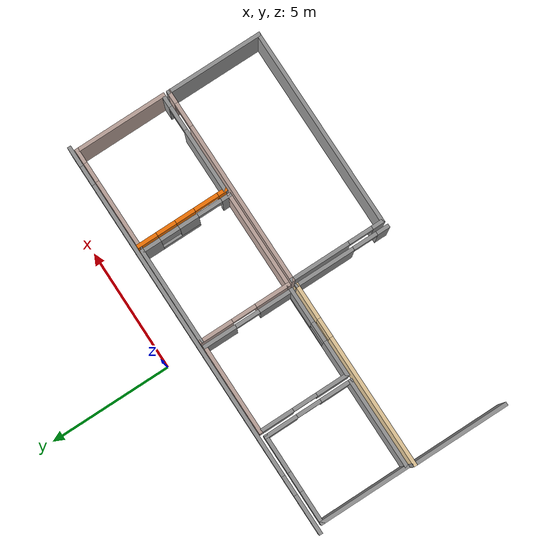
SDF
<sdf version="1.6">
 <model name="Testhaus1">
  <pose>0.163791 -11.4063 0 0 -0 0</pose>
  <link name="Wall_10">
   <collision name="Wall_10_Collision">
    <geometry><box><size>3.78012 0.15 2.5</size></box></geometry>
    <pose>0 0 1.25 0 -0 0</pose>
   </collision>
   <visual name="Wall_10_Visual">
    <pose>0 0 1.25 0 -0 0</pose>
    <geometry><box><size>3.78012 0.15 2.5</size></box></geometry>
    <material>
     <script><uri>file://media/materials/scripts/gazebo.material</uri><name>Gazebo/Grey</name></script>
     <ambient>1 1 1 1</ambient>
    </material>
    <meta><layer>0</layer></meta>
   </visual>
   <pose>-6.11 6.2 0 0 -0 0</pose>
  </link>
  <link name="Wall_11">
   <pose>-4.3 7.99 0 0 -0 1.57357</pose>
   <visual name="Wall_11_Visual_0">
    <pose>-1.19399 0 1.25 0 -0 0</pose>
    <geometry><box><size>1.36203 0.15 2.5</size></box></geometry>
    <material>
     <script><uri>file://media/materials/scripts/gazebo.material</uri><name>Gazebo/Grey</name></script>
     <ambient>1 1 1 1</ambient>
    </material>
    <meta><layer>0</layer></meta>
   </visual>
   <collision name="Wall_11_Collision_0">
    <geometry><box><size>1.36203 0.15 2.5</size></box></geometry>
    <pose>-1.19399 0 1.25 0 -0 0</pose>
   </collision>
   <visual name="Wall_11_Visual_1">
    <pose>1.18101 0 1.25 0 -0 0</pose>
    <geometry><box><size>1.38799 0.15 2.5</size></box></geometry>
    <material>
     <script><uri>file://media/materials/scripts/gazebo.material</uri><name>Gazebo/Grey</name></script>
     <ambient>1 1 1 1</ambient>
    </material>
    <meta><layer>0</layer></meta>
   </visual>
   <collision name="Wall_11_Collision_1">
    <geometry><box><size>1.38799 0.15 2.5</size></box></geometry>
    <pose>1.18101 0 1.25 0 -0 0</pose>
   </collision>
   <visual name="Wall_11_Visual_2">
    <pose>-0.012979 0 2.25 0 -0 0</pose>
    <geometry><box><size>1 0.15 0.5</size></box></geometry>
    <material>
     <script><uri>file://media/materials/scripts/gazebo.material</uri><name>Gazebo/Grey</name></script>
     <ambient>1 1 1 1</ambient>
    </material>
    <meta><layer>0</layer></meta>
   </visual>
   <collision name="Wall_11_Collision_2">
    <geometry><box><size>1 0.15 0.5</size></box></geometry>
    <pose>-0.012979 0 2.25 0 -0 0</pose>
   </collision>
  </link>
  <link name="Wall_14">
   <pose>-4.04051 8.02376 0 0 -0 -1.5708</pose>
   <visual name="Wall_14_Visual_0">
    <pose>-1.18411 0 1.25 0 -0 0</pose>
    <geometry><box><size>1.46177 0.15 2.5</size></box></geometry>
    <material>
     <script><uri>file://media/materials/scripts/gazebo.material</uri><name>Gazebo/Grey</name></script>
     <ambient>1 1 1 1</ambient>
    </material>
    <meta><layer>0</layer></meta>
   </visual>
   <collision name="Wall_14_Collision_0">
    <geometry><box><size>1.46177 0.15 2.5</size></box></geometry>
    <pose>-1.18411 0 1.25 0 -0 0</pose>
   </collision>
   <visual name="Wall_14_Visual_1">
    <pose>1.23089 0 1.25 0 -0 0</pose>
    <geometry><box><size>1.36823 0.15 2.5</size></box></geometry>
    <material>
     <script><uri>file://media/materials/scripts/gazebo.material</uri><name>Gazebo/Grey</name></script>
     <ambient>1 1 1 1</ambient>
    </material>
    <meta><layer>0</layer></meta>
   </visual>
   <collision name="Wall_14_Collision_1">
    <geometry><box><size>1.36823 0.15 2.5</size></box></geometry>
    <pose>1.23089 0 1.25 0 -0 0</pose>
   </collision>
   <visual name="Wall_14_Visual_2">
    <pose>0.046771 0 2.25 0 -0 0</pose>
    <geometry><box><size>1 0.15 0.5</size></box></geometry>
    <material>
     <script><uri>file://media/materials/scripts/gazebo.material</uri><name>Gazebo/Grey</name></script>
     <ambient>1 1 1 1</ambient>
    </material>
    <meta><layer>0</layer></meta>
   </visual>
   <collision name="Wall_14_Collision_2">
    <geometry><box><size>1 0.15 0.5</size></box></geometry>
    <pose>0.046771 0 2.25 0 -0 0</pose>
   </collision>
  </link>
  <link name="Wall_15">
   <pose>-2.24051 6.18377 0 0 -0 0</pose>
   <visual name="Wall_15_Visual_0">
    <pose>-1.12575 0 1.25 0 -0 0</pose>
    <geometry><box><size>1.49849 0.15 2.5</size></box></geometry>
    <material>
     <script><uri>file://media/materials/scripts/gazebo.material</uri><name>Gazebo/Grey</name></script>
     <ambient>1 1 1 1</ambient>
    </material>
    <meta><layer>0</layer></meta>
   </visual>
   <collision name="Wall_15_Collision_0">
    <geometry><box><size>1.49849 0.15 2.5</size></box></geometry>
    <pose>-1.12575 0 1.25 0 -0 0</pose>
   </collision>
   <visual name="Wall_15_Visual_1">
    <pose>0.749247 0 0.25 0 -0 0</pose>
    <geometry><box><size>2.2515 0.15 0.5</size></box></geometry>
    <material>
     <script><uri>file://media/materials/scripts/gazebo.material</uri><name>Gazebo/Grey</name></script>
     <ambient>1 1 1 1</ambient>
    </material>
    <meta><layer>0</layer></meta>
   </visual>
   <collision name="Wall_15_Collision_1">
    <geometry><box><size>2.2515 0.15 0.5</size></box></geometry>
    <pose>0.749247 0 0.25 0 -0 0</pose>
   </collision>
   <visual name="Wall_15_Visual_2">
    <pose>1.14925 0 1.5 0 -0 0</pose>
    <geometry><box><size>1.45151 0.15 2</size></box></geometry>
    <material>
     <script><uri>file://media/materials/scripts/gazebo.material</uri><name>Gazebo/Grey</name></script>
     <ambient>1 1 1 1</ambient>
    </material>
    <meta><layer>0</layer></meta>
   </visual>
   <collision name="Wall_15_Collision_2">
    <geometry><box><size>1.45151 0.15 2</size></box></geometry>
    <pose>1.14925 0 1.5 0 -0 0</pose>
   </collision>
   <visual name="Wall_15_Visual_3">
    <pose>0.023495 0 1.9 0 -0 0</pose>
    <geometry><box><size>0.8 0.15 1.2</size></box></geometry>
    <material>
     <script><uri>file://media/materials/scripts/gazebo.material</uri><name>Gazebo/Grey</name></script>
     <ambient>1 1 1 1</ambient>
    </material>
    <meta><layer>0</layer></meta>
   </visual>
   <collision name="Wall_15_Collision_3">
    <geometry><box><size>0.8 0.15 1.2</size></box></geometry>
    <pose>0.023495 0 1.9 0 -0 0</pose>
   </collision>
  </link>
  <link name="Wall_16">
   <pose>-0.440512 8.02376 0 0 -0 1.5708</pose>
   <visual name="Wall_16_Visual_0">
    <pose>-1.19129 0 1.25 0 -0 0</pose>
    <geometry><box><size>1.44742 0.15 2.5</size></box></geometry>
    <material>
     <script><uri>file://media/materials/scripts/gazebo.material</uri><name>Gazebo/Grey</name></script>
     <ambient>1 1 1 1</ambient>
    </material>
    <meta><layer>0</layer></meta>
   </visual>
   <collision name="Wall_16_Collision_0">
    <geometry><box><size>1.44742 0.15 2.5</size></box></geometry>
    <pose>-1.19129 0 1.25 0 -0 0</pose>
   </collision>
   <visual name="Wall_16_Visual_1">
    <pose>1.22371 0 1.25 0 -0 0</pose>
    <geometry><box><size>1.38258 0.15 2.5</size></box></geometry>
    <material>
     <script><uri>file://media/materials/scripts/gazebo.material</uri><name>Gazebo/Grey</name></script>
     <ambient>1 1 1 1</ambient>
    </material>
    <meta><layer>0</layer></meta>
   </visual>
   <collision name="Wall_16_Collision_1">
    <geometry><box><size>1.38258 0.15 2.5</size></box></geometry>
    <pose>1.22371 0 1.25 0 -0 0</pose>
   </collision>
   <visual name="Wall_16_Visual_2">
    <pose>0.032421 0 2.25 0 -0 0</pose>
    <geometry><box><size>1 0.15 0.5</size></box></geometry>
    <material>
     <script><uri>file://media/materials/scripts/gazebo.material</uri><name>Gazebo/Grey</name></script>
     <ambient>1 1 1 1</ambient>
    </material>
    <meta><layer>0</layer></meta>
   </visual>
   <collision name="Wall_16_Collision_2">
    <geometry><box><size>1 0.15 0.5</size></box></geometry>
    <pose>0.032421 0 2.25 0 -0 0</pose>
   </collision>
  </link>
  <link name="Wall_17">
   <collision name="Wall_17_Collision">
    <geometry><box><size>3.75 0.15 2.5</size></box></geometry>
    <pose>0 0 1.25 0 -0 0</pose>
   </collision>
   <visual name="Wall_17_Visual">
    <pose>0 0 1.25 0 -0 0</pose>
    <geometry><box><size>3.75 0.15 2.5</size></box></geometry>
    <material>
     <script><uri>file://media/materials/scripts/gazebo.material</uri><name>Gazebo/Grey</name></script>
     <ambient>0.760784 0.662745 0.627451 1</ambient>
    </material>
    <meta><layer>0</layer></meta>
   </visual>
   <pose>-2.24051 9.87377 0 0 -0 3.14159</pose>
  </link>
  <link name="Wall_19">
   <pose>-0.210083 8.02674 0 0 -0 1.5708</pose>
   <visual name="Wall_19_Visual_0">
    <pose>-1.19778 0 1.25 0 -0 0</pose>
    <geometry><box><size>1.45445 0.15 2.5</size></box></geometry>
    <material>
     <script><uri>file://media/materials/scripts/gazebo.material</uri><name>Gazebo/Grey</name></script>
     <ambient>0.760784 0.662745 0.627451 1</ambient>
    </material>
    <meta><layer>0</layer></meta>
   </visual>
   <collision name="Wall_19_Collision_0">
    <geometry><box><size>1.45445 0.15 2.5</size></box></geometry>
    <pose>-1.19778 0 1.25 0 -0 0</pose>
   </collision>
   <visual name="Wall_19_Visual_1">
    <pose>1.22723 0 1.25 0 -0 0</pose>
    <geometry><box><size>1.39555 0.15 2.5</size></box></geometry>
    <material>
     <script><uri>file://media/materials/scripts/gazebo.material</uri><name>Gazebo/Grey</name></script>
     <ambient>0.760784 0.662745 0.627451 1</ambient>
    </material>
    <meta><layer>0</layer></meta>
   </visual>
   <collision name="Wall_19_Collision_1">
    <geometry><box><size>1.39555 0.15 2.5</size></box></geometry>
    <pose>1.22723 0 1.25 0 -0 0</pose>
   </collision>
   <visual name="Wall_19_Visual_2">
    <pose>0.02945 0 2.25 0 -0 0</pose>
    <geometry><box><size>1 0.15 0.5</size></box></geometry>
    <material>
     <script><uri>file://media/materials/scripts/gazebo.material</uri><name>Gazebo/Grey</name></script>
     <ambient>0.760784 0.662745 0.627451 1</ambient>
    </material>
    <meta><layer>0</layer></meta>
   </visual>
   <collision name="Wall_19_Collision_2">
    <geometry><box><size>1 0.15 0.5</size></box></geometry>
    <pose>0.02945 0 2.25 0 -0 0</pose>
   </collision>
  </link>
  <link name="Wall_20">
   <collision name="Wall_20_Collision">
    <geometry><box><size>4 0.15 2.5</size></box></geometry>
    <pose>0 0 1.25 0 -0 0</pose>
   </collision>
   <visual name="Wall_20_Visual">
    <pose>0 0 1.25 0 -0 0</pose>
    <geometry><box><size>4 0.15 2.5</size></box></geometry>
    <material>
     <script><uri>file://media/materials/scripts/gazebo.material</uri><name>Gazebo/Grey</name></script>
     <ambient>1 1 1 1</ambient>
    </material>
    <meta><layer>0</layer></meta>
   </visual>
   <pose>1.71492 9.88674 0 0 -0 0</pose>
  </link>
  <link name="Wall_21">
   <pose>3.63992 8.02674 0 0 -0 -1.5708</pose>
   <visual name="Wall_21_Visual_0">
    <pose>-1.51075 0 1.25 0 -0 0</pose>
    <geometry><box><size>0.828493 0.15 2.5</size></box></geometry>
    <material>
     <script><uri>file://media/materials/scripts/gazebo.material</uri><name>Gazebo/Grey</name></script>
     <ambient>1 1 1 1</ambient>
    </material>
    <meta><layer>0</layer></meta>
   </visual>
   <collision name="Wall_21_Collision_0">
    <geometry><box><size>0.828493 0.15 2.5</size></box></geometry>
    <pose>-1.51075 0 1.25 0 -0 0</pose>
   </collision>
   <visual name="Wall_21_Visual_1">
    <pose>1.71575 0 1.25 0 -0 0</pose>
    <geometry><box><size>0.418499 0.15 2.5</size></box></geometry>
    <material>
     <script><uri>file://media/materials/scripts/gazebo.material</uri><name>Gazebo/Grey</name></script>
     <ambient>1 1 1 1</ambient>
    </material>
    <meta><layer>0</layer></meta>
   </visual>
   <collision name="Wall_21_Collision_1">
    <geometry><box><size>0.418499 0.15 2.5</size></box></geometry>
    <pose>1.71575 0 1.25 0 -0 0</pose>
   </collision>
   <visual name="Wall_21_Visual_2">
    <pose>-0.295003 0 0.25 0 -0 0</pose>
    <geometry><box><size>1.60301 0.15 0.5</size></box></geometry>
    <material>
     <script><uri>file://media/materials/scripts/gazebo.material</uri><name>Gazebo/Grey</name></script>
     <ambient>1 1 1 1</ambient>
    </material>
    <meta><layer>0</layer></meta>
   </visual>
   <collision name="Wall_21_Collision_2">
    <geometry><box><size>1.60301 0.15 0.5</size></box></geometry>
    <pose>-0.295003 0 0.25 0 -0 0</pose>
   </collision>
   <visual name="Wall_21_Visual_3">
    <pose>0.104997 0 1.5 0 -0 0</pose>
    <geometry><box><size>0.803009 0.15 2</size></box></geometry>
    <material>
     <script><uri>file://media/materials/scripts/gazebo.material</uri><name>Gazebo/Grey</name></script>
     <ambient>1 1 1 1</ambient>
    </material>
    <meta><layer>0</layer></meta>
   </visual>
   <collision name="Wall_21_Collision_3">
    <geometry><box><size>0.803009 0.15 2</size></box></geometry>
    <pose>0.104997 0 1.5 0 -0 0</pose>
   </collision>
   <visual name="Wall_21_Visual_4">
    <pose>-0.696507 0 1.9 0 -0 0</pose>
    <geometry><box><size>0.8 0.15 1.2</size></box></geometry>
    <material>
     <script><uri>file://media/materials/scripts/gazebo.material</uri><name>Gazebo/Grey</name></script>
     <ambient>1 1 1 1</ambient>
    </material>
    <meta><layer>0</layer></meta>
   </visual>
   <collision name="Wall_21_Collision_4">
    <geometry><box><size>0.8 0.15 1.2</size></box></geometry>
    <pose>-0.696507 0 1.9 0 -0 0</pose>
   </collision>
   <visual name="Wall_21_Visual_5">
    <pose>1.0065 0 2.25 0 -0 0</pose>
    <geometry><box><size>1 0.15 0.5</size></box></geometry>
    <material>
     <script><uri>file://media/materials/scripts/gazebo.material</uri><name>Gazebo/Grey</name></script>
     <ambient>1 1 1 1</ambient>
    </material>
    <meta><layer>0</layer></meta>
   </visual>
   <collision name="Wall_21_Collision_5">
    <geometry><box><size>1 0.15 0.5</size></box></geometry>
    <pose>1.0065 0 2.25 0 -0 0</pose>
   </collision>
  </link>
  <link name="Wall_22">
   <collision name="Wall_22_Collision">
    <geometry><box><size>4 0.15 2.5</size></box></geometry>
    <pose>0 0 1.25 0 -0 0</pose>
   </collision>
   <visual name="Wall_22_Visual">
    <pose>0 0 1.25 0 -0 0</pose>
    <geometry><box><size>4 0.15 2.5</size></box></geometry>
    <material>
     <script><uri>file://media/materials/scripts/gazebo.material</uri><name>Gazebo/Grey</name></script>
     <ambient>0.760784 0.662745 0.627451 1</ambient>
    </material>
    <meta><layer>0</layer></meta>
   </visual>
   <pose>1.71492 6.17674 0 0 -0 3.14159</pose>
  </link>
  <link name="Wall_25">
   <pose>3.87412 8.04618 0 0 -0 -1.56808</pose>
   <visual name="Wall_25_Visual_0">
    <pose>-1.49608 0 1.25 0 -0 0</pose>
    <geometry><box><size>0.837861 0.15 2.5</size></box></geometry>
    <material>
     <script><uri>file://media/materials/scripts/gazebo.material</uri><name>Gazebo/Grey</name></script>
     <ambient>0.996078 0.47451 0.0196078 1</ambient>
    </material>
    <meta><layer>0</layer></meta>
   </visual>
   <collision name="Wall_25_Collision_0">
    <geometry><box><size>0.837861 0.15 2.5</size></box></geometry>
    <pose>-1.49608 0 1.25 0 -0 0</pose>
   </collision>
   <visual name="Wall_25_Visual_1">
    <pose>1.72051 0 1.25 0 -0 0</pose>
    <geometry><box><size>0.388999 0.15 2.5</size></box></geometry>
    <material>
     <script><uri>file://media/materials/scripts/gazebo.material</uri><name>Gazebo/Grey</name></script>
     <ambient>0.996078 0.47451 0.0196078 1</ambient>
    </material>
    <meta><layer>0</layer></meta>
   </visual>
   <collision name="Wall_25_Collision_1">
    <geometry><box><size>0.388999 0.15 2.5</size></box></geometry>
    <pose>1.72051 0 1.25 0 -0 0</pose>
   </collision>
   <visual name="Wall_25_Visual_2">
    <pose>-0.275569 0 0.25 0 -0 0</pose>
    <geometry><box><size>1.60315 0.15 0.5</size></box></geometry>
    <material>
     <script><uri>file://media/materials/scripts/gazebo.material</uri><name>Gazebo/Grey</name></script>
     <ambient>0.996078 0.47451 0.0196078 1</ambient>
    </material>
    <meta><layer>0</layer></meta>
   </visual>
   <collision name="Wall_25_Collision_2">
    <geometry><box><size>1.60315 0.15 0.5</size></box></geometry>
    <pose>-0.275569 0 0.25 0 -0 0</pose>
   </collision>
   <visual name="Wall_25_Visual_3">
    <pose>0.124431 0 1.5 0 -0 0</pose>
    <geometry><box><size>0.803154 0.15 2</size></box></geometry>
    <material>
     <script><uri>file://media/materials/scripts/gazebo.material</uri><name>Gazebo/Grey</name></script>
     <ambient>0.996078 0.47451 0.0196078 1</ambient>
    </material>
    <meta><layer>0</layer></meta>
   </visual>
   <collision name="Wall_25_Collision_3">
    <geometry><box><size>0.803154 0.15 2</size></box></geometry>
    <pose>0.124431 0 1.5 0 -0 0</pose>
   </collision>
   <visual name="Wall_25_Visual_4">
    <pose>-0.677146 0 1.9 0 -0 0</pose>
    <geometry><box><size>0.8 0.15 1.2</size></box></geometry>
    <material>
     <script><uri>file://media/materials/scripts/gazebo.material</uri><name>Gazebo/Grey</name></script>
     <ambient>0.996078 0.47451 0.0196078 1</ambient>
    </material>
    <meta><layer>0</layer></meta>
   </visual>
   <collision name="Wall_25_Collision_4">
    <geometry><box><size>0.8 0.15 1.2</size></box></geometry>
    <pose>-0.677146 0 1.9 0 -0 0</pose>
   </collision>
   <visual name="Wall_25_Visual_5">
    <pose>1.02601 0 2.25 0 -0 0</pose>
    <geometry><box><size>1 0.15 0.5</size></box></geometry>
    <material>
     <script><uri>file://media/materials/scripts/gazebo.material</uri><name>Gazebo/Grey</name></script>
     <ambient>0.996078 0.47451 0.0196078 1</ambient>
    </material>
    <meta><layer>0</layer></meta>
   </visual>
   <collision name="Wall_25_Collision_5">
    <geometry><box><size>1 0.15 0.5</size></box></geometry>
    <pose>1.02601 0 2.25 0 -0 0</pose>
   </collision>
  </link>
  <link name="Wall_26">
   <pose>5.92912 6.20618 0 0 -0 0</pose>
   <visual name="Wall_26_Visual_0">
    <pose>-0.789086 0 1.25 0 -0 0</pose>
    <geometry><box><size>2.67183 0.15 2.5</size></box></geometry>
    <material>
     <script><uri>file://media/materials/scripts/gazebo.material</uri><name>Gazebo/Grey</name></script>
     <ambient>1 1 1 1</ambient>
    </material>
    <meta><layer>0</layer></meta>
   </visual>
   <collision name="Wall_26_Collision_0">
    <geometry><box><size>2.67183 0.15 2.5</size></box></geometry>
    <pose>-0.789086 0 1.25 0 -0 0</pose>
   </collision>
   <visual name="Wall_26_Visual_1">
    <pose>1.83591 0 1.25 0 -0 0</pose>
    <geometry><box><size>0.578171 0.15 2.5</size></box></geometry>
    <material>
     <script><uri>file://media/materials/scripts/gazebo.material</uri><name>Gazebo/Grey</name></script>
     <ambient>1 1 1 1</ambient>
    </material>
    <meta><layer>0</layer></meta>
   </visual>
   <collision name="Wall_26_Collision_1">
    <geometry><box><size>0.578171 0.15 2.5</size></box></geometry>
    <pose>1.83591 0 1.25 0 -0 0</pose>
   </collision>
   <visual name="Wall_26_Visual_2">
    <pose>1.04683 0 2.25 0 -0 0</pose>
    <geometry><box><size>1 0.15 0.5</size></box></geometry>
    <material>
     <script><uri>file://media/materials/scripts/gazebo.material</uri><name>Gazebo/Grey</name></script>
     <ambient>1 1 1 1</ambient>
    </material>
    <meta><layer>0</layer></meta>
   </visual>
   <collision name="Wall_26_Collision_2">
    <geometry><box><size>1 0.15 0.5</size></box></geometry>
    <pose>1.04683 0 2.25 0 -0 0</pose>
   </collision>
  </link>
  <link name="Wall_27">
   <collision name="Wall_27_Collision">
    <geometry><box><size>3.83001 0.15 2.5</size></box></geometry>
    <pose>0 0 1.25 0 -0 0</pose>
   </collision>
   <visual name="Wall_27_Visual">
    <pose>0 0 1.25 0 -0 0</pose>
    <geometry><box><size>3.83001 0.15 2.5</size></box></geometry>
    <material>
     <script><uri>file://media/materials/scripts/gazebo.material</uri><name>Gazebo/Grey</name></script>
     <ambient>0.760784 0.662745 0.627451 1</ambient>
    </material>
    <meta><layer>0</layer></meta>
   </visual>
   <pose>7.97412 8.04618 0 0 -0 1.57351</pose>
  </link>
  <link name="Wall_28">
   <pose>5.91912 9.87618 0 0 -0 3.14159</pose>
   <visual name="Wall_28_Visual_0">
    <pose>-1.81839 0 1.25 0 -0 0</pose>
    <geometry><box><size>0.613212 0.15 2.5</size></box></geometry>
    <material>
     <script><uri>file://media/materials/scripts/gazebo.material</uri><name>Gazebo/Grey</name></script>
     <ambient>0.760784 0.662745 0.627451 1</ambient>
    </material>
    <meta><layer>0</layer></meta>
   </visual>
   <collision name="Wall_28_Collision_0">
    <geometry><box><size>0.613212 0.15 2.5</size></box></geometry>
    <pose>-1.81839 0 1.25 0 -0 0</pose>
   </collision>
   <visual name="Wall_28_Visual_1">
    <pose>0.306606 0 0.25 0 -0 0</pose>
    <geometry><box><size>3.63679 0.15 0.5</size></box></geometry>
    <material>
     <script><uri>file://media/materials/scripts/gazebo.material</uri><name>Gazebo/Grey</name></script>
     <ambient>0.760784 0.662745 0.627451 1</ambient>
    </material>
    <meta><layer>0</layer></meta>
   </visual>
   <collision name="Wall_28_Collision_1">
    <geometry><box><size>3.63679 0.15 0.5</size></box></geometry>
    <pose>0.306606 0 0.25 0 -0 0</pose>
   </collision>
   <visual name="Wall_28_Visual_2">
    <pose>0.706606 0 1.5 0 -0 0</pose>
    <geometry><box><size>2.83679 0.15 2</size></box></geometry>
    <material>
     <script><uri>file://media/materials/scripts/gazebo.material</uri><name>Gazebo/Grey</name></script>
     <ambient>0.760784 0.662745 0.627451 1</ambient>
    </material>
    <meta><layer>0</layer></meta>
   </visual>
   <collision name="Wall_28_Collision_2">
    <geometry><box><size>2.83679 0.15 2</size></box></geometry>
    <pose>0.706606 0 1.5 0 -0 0</pose>
   </collision>
   <visual name="Wall_28_Visual_3">
    <pose>-1.11179 0 1.9 0 -0 0</pose>
    <geometry><box><size>0.8 0.15 1.2</size></box></geometry>
    <material>
     <script><uri>file://media/materials/scripts/gazebo.material</uri><name>Gazebo/Grey</name></script>
     <ambient>0.760784 0.662745 0.627451 1</ambient>
    </material>
    <meta><layer>0</layer></meta>
   </visual>
   <collision name="Wall_28_Collision_3">
    <geometry><box><size>0.8 0.15 1.2</size></box></geometry>
    <pose>-1.11179 0 1.9 0 -0 0</pose>
   </collision>
  </link>
  <link name="Wall_30">
   <collision name="Wall_30_Collision">
    <geometry><box><size>3.75 0.15 2.5</size></box></geometry>
    <pose>0 0 1.25 0 -0 0</pose>
   </collision>
   <visual name="Wall_30_Visual">
    <pose>0 0 1.25 0 -0 0</pose>
    <geometry><box><size>3.75 0.15 2.5</size></box></geometry>
    <material>
     <script><uri>file://media/materials/scripts/gazebo.material</uri><name>Gazebo/Grey</name></script>
     <ambient>1 1 1 1</ambient>
    </material>
    <meta><layer>0</layer></meta>
   </visual>
   <pose>-7.925 8 0 0 -0 1.5708</pose>
  </link>
  <link name="Wall_33">
   <pose>-6.115 9.795 0 0 -0 -0.002762</pose>
   <visual name="Wall_33_Visual_0">
    <pose>-1.1885 0 1.25 0 -0 0</pose>
    <geometry><box><size>1.39302 0.15 2.5</size></box></geometry>
    <material>
     <script><uri>file://media/materials/scripts/gazebo.material</uri><name>Gazebo/Grey</name></script>
     <ambient>1 1 1 1</ambient>
    </material>
    <meta><layer>0</layer></meta>
   </visual>
   <collision name="Wall_33_Collision_0">
    <geometry><box><size>1.39302 0.15 2.5</size></box></geometry>
    <pose>-1.1885 0 1.25 0 -0 0</pose>
   </collision>
   <visual name="Wall_33_Visual_1">
    <pose>0.696509 0 0.25 0 -0 0</pose>
    <geometry><box><size>2.37699 0.15 0.5</size></box></geometry>
    <material>
     <script><uri>file://media/materials/scripts/gazebo.material</uri><name>Gazebo/Grey</name></script>
     <ambient>1 1 1 1</ambient>
    </material>
    <meta><layer>0</layer></meta>
   </visual>
   <collision name="Wall_33_Collision_1">
    <geometry><box><size>2.37699 0.15 0.5</size></box></geometry>
    <pose>0.696509 0 0.25 0 -0 0</pose>
   </collision>
   <visual name="Wall_33_Visual_2">
    <pose>1.09651 0 1.5 0 -0 0</pose>
    <geometry><box><size>1.57699 0.15 2</size></box></geometry>
    <material>
     <script><uri>file://media/materials/scripts/gazebo.material</uri><name>Gazebo/Grey</name></script>
     <ambient>1 1 1 1</ambient>
    </material>
    <meta><layer>0</layer></meta>
   </visual>
   <collision name="Wall_33_Collision_2">
    <geometry><box><size>1.57699 0.15 2</size></box></geometry>
    <pose>1.09651 0 1.5 0 -0 0</pose>
   </collision>
   <visual name="Wall_33_Visual_3">
    <pose>-0.091988 0 1.9 0 -0 0</pose>
    <geometry><box><size>0.8 0.15 1.2</size></box></geometry>
    <material>
     <script><uri>file://media/materials/scripts/gazebo.material</uri><name>Gazebo/Grey</name></script>
     <ambient>1 1 1 1</ambient>
    </material>
    <meta><layer>0</layer></meta>
   </visual>
   <collision name="Wall_33_Collision_3">
    <geometry><box><size>0.8 0.15 1.2</size></box></geometry>
    <pose>-0.091988 0 1.9 0 -0 0</pose>
   </collision>
  </link>
  <link name="Wall_35">
   <pose>3.91023 5.9629 0 0 -0 3.14159</pose>
   <visual name="Wall_35_Visual_0">
    <pose>-3.84536 0 1.25 0 -0 0</pose>
    <geometry><box><size>0.559283 0.15 2.5</size></box></geometry>
    <material>
     <script><uri>file://media/materials/scripts/gazebo.material</uri><name>Gazebo/Grey</name></script>
     <ambient>0.760784 0.662745 0.627451 1</ambient>
    </material>
    <meta><layer>0</layer></meta>
   </visual>
   <collision name="Wall_35_Collision_0">
    <geometry><box><size>0.559283 0.15 2.5</size></box></geometry>
    <pose>-3.84536 0 1.25 0 -0 0</pose>
   </collision>
   <visual name="Wall_35_Visual_1">
    <pose>0.779642 0 1.25 0 -0 0</pose>
    <geometry><box><size>6.69072 0.15 2.5</size></box></geometry>
    <material>
     <script><uri>file://media/materials/scripts/gazebo.material</uri><name>Gazebo/Grey</name></script>
     <ambient>0.760784 0.662745 0.627451 1</ambient>
    </material>
    <meta><layer>0</layer></meta>
   </visual>
   <collision name="Wall_35_Collision_1">
    <geometry><box><size>6.69072 0.15 2.5</size></box></geometry>
    <pose>0.779642 0 1.25 0 -0 0</pose>
   </collision>
   <visual name="Wall_35_Visual_2">
    <pose>-3.06572 0 2.25 0 -0 0</pose>
    <geometry><box><size>1 0.15 0.5</size></box></geometry>
    <material>
     <script><uri>file://media/materials/scripts/gazebo.material</uri><name>Gazebo/Grey</name></script>
     <ambient>0.760784 0.662745 0.627451 1</ambient>
    </material>
    <meta><layer>0</layer></meta>
   </visual>
   <collision name="Wall_35_Collision_2">
    <geometry><box><size>1 0.15 0.5</size></box></geometry>
    <pose>-3.06572 0 2.25 0 -0 0</pose>
   </collision>
  </link>
  <link name="Wall_36">
   <pose>-0.13977 4.0379 0 0 -0 -1.5708</pose>
   <visual name="Wall_36_Visual_0">
    <pose>-0.753952 0 1.25 0 -0 0</pose>
    <geometry><box><size>2.4921 0.15 2.5</size></box></geometry>
    <material>
     <script><uri>file://media/materials/scripts/gazebo.material</uri><name>Gazebo/Grey</name></script>
     <ambient>1 1 1 1</ambient>
    </material>
    <meta><layer>0</layer></meta>
   </visual>
   <collision name="Wall_36_Collision_0">
    <geometry><box><size>2.4921 0.15 2.5</size></box></geometry>
    <pose>-0.753952 0 1.25 0 -0 0</pose>
   </collision>
   <visual name="Wall_36_Visual_1">
    <pose>1.74605 0 1.25 0 -0 0</pose>
    <geometry><box><size>0.507903 0.15 2.5</size></box></geometry>
    <material>
     <script><uri>file://media/materials/scripts/gazebo.material</uri><name>Gazebo/Grey</name></script>
     <ambient>1 1 1 1</ambient>
    </material>
    <meta><layer>0</layer></meta>
   </visual>
   <collision name="Wall_36_Collision_1">
    <geometry><box><size>0.507903 0.15 2.5</size></box></geometry>
    <pose>1.74605 0 1.25 0 -0 0</pose>
   </collision>
   <visual name="Wall_36_Visual_2">
    <pose>0.992097 0 2.25 0 -0 0</pose>
    <geometry><box><size>1 0.15 0.5</size></box></geometry>
    <material>
     <script><uri>file://media/materials/scripts/gazebo.material</uri><name>Gazebo/Grey</name></script>
     <ambient>1 1 1 1</ambient>
    </material>
    <meta><layer>0</layer></meta>
   </visual>
   <collision name="Wall_36_Collision_2">
    <geometry><box><size>1 0.15 0.5</size></box></geometry>
    <pose>0.992097 0 2.25 0 -0 0</pose>
   </collision>
  </link>
  <link name="Wall_37">
   <collision name="Wall_37_Collision">
    <geometry><box><size>8.25 0.15 2.5</size></box></geometry>
    <pose>0 0 1.25 0 -0 0</pose>
   </collision>
   <visual name="Wall_37_Visual">
    <pose>0 0 1.25 0 -0 0</pose>
    <geometry><box><size>8.25 0.15 2.5</size></box></geometry>
    <material>
     <script><uri>file://media/materials/scripts/gazebo.material</uri><name>Gazebo/Grey</name></script>
     <ambient>1 1 1 1</ambient>
    </material>
    <meta><layer>0</layer></meta>
   </visual>
   <pose>3.91023 2.1129 0 0 -0 0</pose>
  </link>
  <link name="Wall_38">
   <collision name="Wall_38_Collision">
    <geometry><box><size>4 0.15 2.5</size></box></geometry>
    <pose>0 0 1.25 0 -0 0</pose>
   </collision>
   <visual name="Wall_38_Visual">
    <pose>0 0 1.25 0 -0 0</pose>
    <geometry><box><size>4 0.15 2.5</size></box></geometry>
    <material>
     <script><uri>file://media/materials/scripts/gazebo.material</uri><name>Gazebo/Grey</name></script>
     <ambient>1 1 1 1</ambient>
    </material>
    <meta><layer>0</layer></meta>
   </visual>
   <pose>7.96023 4.0379 0 0 -0 1.5708</pose>
  </link>
  <link name="Wall_4">
   <pose>-0 10.05 0 0 -0 0</pose>
   <visual name="Wall_4_Visual_0">
    <pose>-7.42852 0 1.25 0 -0 0</pose>
    <geometry><box><size>1.64295 0.15 2.5</size></box></geometry>
    <material>
     <script><uri>file://media/materials/scripts/gazebo.material</uri><name>Gazebo/Grey</name></script>
     <ambient>1 1 1 1</ambient>
    </material>
    <meta><layer>0</layer></meta>
   </visual>
   <collision name="Wall_4_Collision_0">
    <geometry><box><size>1.64295 0.15 2.5</size></box></geometry>
    <pose>-7.42852 0 1.25 0 -0 0</pose>
   </collision>
   <visual name="Wall_4_Visual_1">
    <pose>0.821477 0 0.25 0 -0 0</pose>
    <geometry><box><size>14.857 0.15 0.5</size></box></geometry>
    <material>
     <script><uri>file://media/materials/scripts/gazebo.material</uri><name>Gazebo/Grey</name></script>
     <ambient>1 1 1 1</ambient>
    </material>
    <meta><layer>0</layer></meta>
   </visual>
   <collision name="Wall_4_Collision_1">
    <geometry><box><size>14.857 0.15 0.5</size></box></geometry>
    <pose>0.821477 0 0.25 0 -0 0</pose>
   </collision>
   <visual name="Wall_4_Visual_2">
    <pose>0.39672 0 1.5 0 -0 0</pose>
    <geometry><box><size>12.4075 0.15 2</size></box></geometry>
    <material>
     <script><uri>file://media/materials/scripts/gazebo.material</uri><name>Gazebo/Grey</name></script>
     <ambient>1 1 1 1</ambient>
    </material>
    <meta><layer>0</layer></meta>
   </visual>
   <collision name="Wall_4_Collision_2">
    <geometry><box><size>12.4075 0.15 2</size></box></geometry>
    <pose>0.39672 0 1.5 0 -0 0</pose>
   </collision>
   <visual name="Wall_4_Visual_3">
    <pose>7.82524 0 1.5 0 -0 0</pose>
    <geometry><box><size>0.849512 0.15 2</size></box></geometry>
    <material>
     <script><uri>file://media/materials/scripts/gazebo.material</uri><name>Gazebo/Grey</name></script>
     <ambient>1 1 1 1</ambient>
    </material>
    <meta><layer>0</layer></meta>
   </visual>
   <collision name="Wall_4_Collision_3">
    <geometry><box><size>0.849512 0.15 2</size></box></geometry>
    <pose>7.82524 0 1.5 0 -0 0</pose>
   </collision>
   <visual name="Wall_4_Visual_4">
    <pose>-6.20705 0 1.9 0 -0 0</pose>
    <geometry><box><size>0.8 0.15 1.2</size></box></geometry>
    <material>
     <script><uri>file://media/materials/scripts/gazebo.material</uri><name>Gazebo/Grey</name></script>
     <ambient>1 1 1 1</ambient>
    </material>
    <meta><layer>0</layer></meta>
   </visual>
   <collision name="Wall_4_Collision_4">
    <geometry><box><size>0.8 0.15 1.2</size></box></geometry>
    <pose>-6.20705 0 1.9 0 -0 0</pose>
   </collision>
   <visual name="Wall_4_Visual_5">
    <pose>7.00049 0 1.9 0 -0 0</pose>
    <geometry><box><size>0.8 0.15 1.2</size></box></geometry>
    <material>
     <script><uri>file://media/materials/scripts/gazebo.material</uri><name>Gazebo/Grey</name></script>
     <ambient>1 1 1 1</ambient>
    </material>
    <meta><layer>0</layer></meta>
   </visual>
   <collision name="Wall_4_Collision_5">
    <geometry><box><size>0.8 0.15 1.2</size></box></geometry>
    <pose>7.00049 0 1.9 0 -0 0</pose>
   </collision>
  </link>
  <link name="Wall_41">
   <pose>-0.39834 4.00204 0 0 -0 -1.5708</pose>
   <visual name="Wall_41_Visual_0">
    <pose>-0.758655 0 1.25 0 -0 0</pose>
    <geometry><box><size>2.48269 0.15 2.5</size></box></geometry>
    <material>
     <script><uri>file://media/materials/scripts/gazebo.material</uri><name>Gazebo/Grey</name></script>
     <ambient>1 1 1 1</ambient>
    </material>
    <meta><layer>0</layer></meta>
   </visual>
   <collision name="Wall_41_Collision_0">
    <geometry><box><size>2.48269 0.15 2.5</size></box></geometry>
    <pose>-0.758655 0 1.25 0 -0 0</pose>
   </collision>
   <visual name="Wall_41_Visual_1">
    <pose>1.74134 0 1.25 0 -0 0</pose>
    <geometry><box><size>0.51731 0.15 2.5</size></box></geometry>
    <material>
     <script><uri>file://media/materials/scripts/gazebo.material</uri><name>Gazebo/Grey</name></script>
     <ambient>1 1 1 1</ambient>
    </material>
    <meta><layer>0</layer></meta>
   </visual>
   <collision name="Wall_41_Collision_1">
    <geometry><box><size>0.51731 0.15 2.5</size></box></geometry>
    <pose>1.74134 0 1.25 0 -0 0</pose>
   </collision>
   <visual name="Wall_41_Visual_2">
    <pose>0.98269 0 2.25 0 -0 0</pose>
    <geometry><box><size>1 0.15 0.5</size></box></geometry>
    <material>
     <script><uri>file://media/materials/scripts/gazebo.material</uri><name>Gazebo/Grey</name></script>
     <ambient>1 1 1 1</ambient>
    </material>
    <meta><layer>0</layer></meta>
   </visual>
   <collision name="Wall_41_Collision_2">
    <geometry><box><size>1 0.15 0.5</size></box></geometry>
    <pose>0.98269 0 2.25 0 -0 0</pose>
   </collision>
  </link>
  <link name="Wall_43">
   <collision name="Wall_43_Collision">
    <geometry><box><size>4 0.15 2.5</size></box></geometry>
    <pose>0 0 1.25 0 -0 0</pose>
   </collision>
   <visual name="Wall_43_Visual">
    <pose>0 0 1.25 0 -0 0</pose>
    <geometry><box><size>4 0.15 2.5</size></box></geometry>
    <material>
     <script><uri>file://media/materials/scripts/gazebo.material</uri><name>Gazebo/Grey</name></script>
     <ambient>1 1 1 1</ambient>
    </material>
    <meta><layer>0</layer></meta>
   </visual>
   <pose>-7.99834 4.00204 0 0 -0 1.5708</pose>
  </link>
  <link name="Wall_44">
   <pose>-4.19834 5.92704 0 0 -0 0</pose>
   <visual name="Wall_44_Visual_0">
    <pose>-1.14684 0 1.25 0 -0 0</pose>
    <geometry><box><size>5.45632 0.15 2.5</size></box></geometry>
    <material>
     <script><uri>file://media/materials/scripts/gazebo.material</uri><name>Gazebo/Grey</name></script>
     <ambient>0.921569 0.807843 0.615686 1</ambient>
    </material>
    <meta><layer>0</layer></meta>
   </visual>
   <collision name="Wall_44_Collision_0">
    <geometry><box><size>5.45632 0.15 2.5</size></box></geometry>
    <pose>-1.14684 0 1.25 0 -0 0</pose>
   </collision>
   <visual name="Wall_44_Visual_1">
    <pose>2.72816 0 0.25 0 -0 0</pose>
    <geometry><box><size>2.29368 0.15 0.5</size></box></geometry>
    <material>
     <script><uri>file://media/materials/scripts/gazebo.material</uri><name>Gazebo/Grey</name></script>
     <ambient>0.921569 0.807843 0.615686 1</ambient>
    </material>
    <meta><layer>0</layer></meta>
   </visual>
   <collision name="Wall_44_Collision_1">
    <geometry><box><size>2.29368 0.15 0.5</size></box></geometry>
    <pose>2.72816 0 0.25 0 -0 0</pose>
   </collision>
   <visual name="Wall_44_Visual_2">
    <pose>3.12816 0 1.5 0 -0 0</pose>
    <geometry><box><size>1.49368 0.15 2</size></box></geometry>
    <material>
     <script><uri>file://media/materials/scripts/gazebo.material</uri><name>Gazebo/Grey</name></script>
     <ambient>0.921569 0.807843 0.615686 1</ambient>
    </material>
    <meta><layer>0</layer></meta>
   </visual>
   <collision name="Wall_44_Collision_2">
    <geometry><box><size>1.49368 0.15 2</size></box></geometry>
    <pose>3.12816 0 1.5 0 -0 0</pose>
   </collision>
   <visual name="Wall_44_Visual_3">
    <pose>1.98132 0 1.9 0 -0 0</pose>
    <geometry><box><size>0.8 0.15 1.2</size></box></geometry>
    <material>
     <script><uri>file://media/materials/scripts/gazebo.material</uri><name>Gazebo/Grey</name></script>
     <ambient>0.921569 0.807843 0.615686 1</ambient>
    </material>
    <meta><layer>0</layer></meta>
   </visual>
   <collision name="Wall_44_Collision_3">
    <geometry><box><size>0.8 0.15 1.2</size></box></geometry>
    <pose>1.98132 0 1.9 0 -0 0</pose>
   </collision>
  </link>
  <static>1</static>
 </model>
</sdf>
